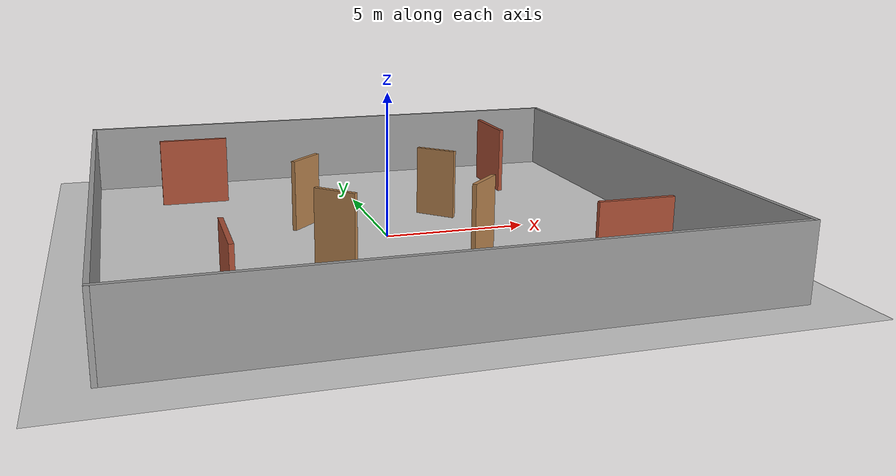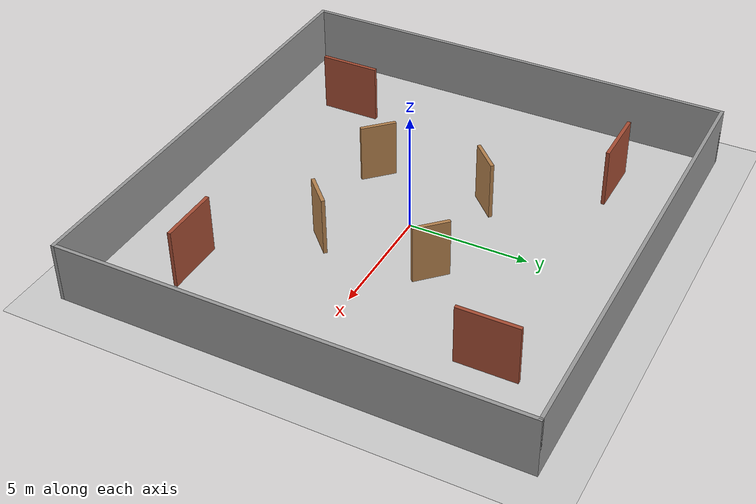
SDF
<sdf version="1.6">
 <world name="default">
  <light name="sun" type="directional">
   <pose>0 0 10 0 -0 0</pose>
   <diffuse>0.8 0.8 0.8 1</diffuse>
   <specular>0.2 0.2 0.2 1</specular>
   <attenuation>
    <range>1000</range>
    <constant>0.9</constant>
    <linear>0.01</linear>
    <quadratic>0.001</quadratic>
   </attenuation>
   <direction>-0.5 0.1 -0.9</direction>
  </light>
  <model name="ground_plane">
   <static>1</static>
   <link name="link">
    <collision name="collision">
     <geometry><plane><normal>0 0 1</normal><size>100 100</size></plane></geometry>
     <surface><friction><ode><mu>100</mu><mu2>50</mu2></ode></friction></surface>
    </collision>
    <visual name="visual">
     <cast_shadows>0</cast_shadows>
     <geometry><plane><normal>0 0 1</normal><size>100 100</size></plane></geometry>
     <material>
      <script><uri>file://media/materials/scripts/gazebo.material</uri><name>Gazebo/Grey</name></script>
     </material>
    </visual>
   </link>
  </model>
  <gravity>0 0 -9.8</gravity>
  <magnetic_field>6e-06 2.3e-05 -4.2e-05</magnetic_field>
  <atmosphere type="adiabatic"/>
  <physics name="default_physics" default="0" type="ode">
   <max_step_size>0.001</max_step_size>
   <real_time_factor>1</real_time_factor>
   <real_time_update_rate>1000</real_time_update_rate>
  </physics>
  <scene><ambient>0.4 0.4 0.4 1</ambient><background>0.7 0.7 0.7 1</background><shadows>1</shadows></scene>
  <spherical_coordinates>
   <surface_model>EARTH_WGS84</surface_model>
   <latitude_deg>0</latitude_deg>
   <longitude_deg>0</longitude_deg>
   <elevation>0</elevation>
   <heading_deg>0</heading_deg>
  </spherical_coordinates>
  <model name="The_Wall.world">
   <link name="Wall_0">
    <collision name="Wall_0_Collision">
     <geometry><box><size>2.5 0.15 2.5</size></box></geometry>
     <pose>0 0 1.25 0 -0 0</pose>
    </collision>
    <visual name="Wall_0_Visual">
     <pose>0 0 1.25 0 -0 0</pose>
     <geometry><box><size>2.5 0.15 2.5</size></box></geometry>
     <material>
      <script><uri>file://media/materials/scripts/gazebo.material</uri><name>Gazebo/Bricks</name></script>
      <ambient>1 1 1 1</ambient>
     </material>
     <meta><layer>0</layer></meta>
    </visual>
    <pose>-6.00681 6.28707 0 0 -0 0</pose>
   </link>
   <link name="Wall_10">
    <collision name="Wall_10_Collision">
     <geometry><box><size>1.5 0.15 2.5</size></box></geometry>
     <pose>0 0 1.25 0 -0 0</pose>
    </collision>
    <visual name="Wall_10_Visual">
     <pose>0 0 1.25 0 -0 0</pose>
     <geometry><box><size>1.5 0.15 2.5</size></box></geometry>
     <material>
      <script><uri>file://media/materials/scripts/gazebo.material</uri><name>Gazebo/Wood</name></script>
      <ambient>1 1 1 1</ambient>
     </material>
     <meta><layer>0</layer></meta>
    </visual>
    <pose>2.45902 2.11015 0 0 -0 -0.785398</pose>
   </link>
   <link name="Wall_14">
    <collision name="Wall_14_Collision">
     <geometry><box><size>1.5 0.15 2.5</size></box></geometry>
     <pose>0 0 1.25 0 -0 0</pose>
    </collision>
    <visual name="Wall_14_Visual">
     <pose>0 0 1.25 0 -0 0</pose>
     <geometry><box><size>1.5 0.15 2.5</size></box></geometry>
     <material>
      <script><uri>file://media/materials/scripts/gazebo.material</uri><name>Gazebo/Wood</name></script>
      <ambient>1 1 1 1</ambient>
     </material>
     <meta><layer>0</layer></meta>
    </visual>
    <pose>2.49665 -2.65194 0 0 -0 -2.35619</pose>
   </link>
   <link name="Wall_16">
    <collision name="Wall_16_Collision">
     <geometry><box><size>1.5 0.15 2.5</size></box></geometry>
     <pose>0 0 1.25 0 -0 0</pose>
    </collision>
    <visual name="Wall_16_Visual">
     <pose>0 0 1.25 0 -0 0</pose>
     <geometry><box><size>1.5 0.15 2.5</size></box></geometry>
     <material>
      <script><uri>file://media/materials/scripts/gazebo.material</uri><name>Gazebo/Wood</name></script>
      <ambient>1 1 1 1</ambient>
     </material>
     <meta><layer>0</layer></meta>
    </visual>
    <pose>-2.4297 -2.69493 0 0 -0 -0.785398</pose>
   </link>
   <link name="Wall_2">
    <collision name="Wall_2_Collision">
     <geometry><box><size>2.5 0.15 2.5</size></box></geometry>
     <pose>0 0 1.25 0 -0 0</pose>
    </collision>
    <visual name="Wall_2_Visual">
     <pose>0 0 1.25 0 -0 0</pose>
     <geometry><box><size>2.5 0.15 2.5</size></box></geometry>
     <material>
      <script><uri>file://media/materials/scripts/gazebo.material</uri><name>Gazebo/Bricks</name></script>
      <ambient>1 1 1 1</ambient>
     </material>
     <meta><layer>0</layer></meta>
    </visual>
    <pose>-6.17502 -6.05993 0 0 -0 -1.5708</pose>
   </link>
   <link name="Wall_4">
    <collision name="Wall_4_Collision">
     <geometry><box><size>2.5 0.15 2.5</size></box></geometry>
     <pose>0 0 1.25 0 -0 0</pose>
    </collision>
    <visual name="Wall_4_Visual">
     <pose>0 0 1.25 0 -0 0</pose>
     <geometry><box><size>2.5 0.15 2.5</size></box></geometry>
     <material>
      <script><uri>file://media/materials/scripts/gazebo.material</uri><name>Gazebo/Bricks</name></script>
      <ambient>1 1 1 1</ambient>
     </material>
     <meta><layer>0</layer></meta>
    </visual>
    <pose>6.00681 -6.13065 0 0 -0 0</pose>
   </link>
   <link name="Wall_6">
    <collision name="Wall_6_Collision">
     <geometry><box><size>2.5 0.15 2.5</size></box></geometry>
     <pose>0 0 1.25 0 -0 0</pose>
    </collision>
    <visual name="Wall_6_Visual">
     <pose>0 0 1.25 0 -0 0</pose>
     <geometry><box><size>2.5 0.15 2.5</size></box></geometry>
     <material>
      <script><uri>file://media/materials/scripts/gazebo.material</uri><name>Gazebo/Bricks</name></script>
      <ambient>1 1 1 1</ambient>
     </material>
     <meta><layer>0</layer></meta>
    </visual>
    <pose>6.13055 6.05993 0 0 -0 1.5708</pose>
   </link>
   <link name="Wall_8">
    <collision name="Wall_8_Collision">
     <geometry><box><size>1.5 0.15 2.5</size></box></geometry>
     <pose>0 0 1.25 0 -0 0</pose>
    </collision>
    <visual name="Wall_8_Visual">
     <pose>0 0 1.25 0 -0 0</pose>
     <geometry><box><size>1.5 0.15 2.5</size></box></geometry>
     <material>
      <script><uri>file://media/materials/scripts/gazebo.material</uri><name>Gazebo/Wood</name></script>
      <ambient>1 1 1 1</ambient>
     </material>
     <meta><layer>0</layer></meta>
    </visual>
    <pose>-2.45085 2.06532 0 0 -0 -2.35619</pose>
   </link>
   <static>1</static>
  </model>
  <model name="wall_2.world">
   <link name="Wall_2">
    <collision name="Wall_2_Collision">
     <geometry><box><size>19.5 0.15 2.5</size></box></geometry>
     <pose>0 0 1.25 0 -0 0</pose>
    </collision>
    <visual name="Wall_2_Visual">
     <pose>0 0 1.25 0 -0 0</pose>
     <geometry><box><size>19.5 0.15 2.5</size></box></geometry>
     <material>
      <script><uri>file://media/materials/scripts/gazebo.material</uri><name>Gazebo/Grey</name></script>
      <ambient>1 1 1 1</ambient>
     </material>
     <meta><layer>0</layer></meta>
    </visual>
    <pose>0 9.425 0 0 -0 0</pose>
   </link>
   <link name="Wall_3">
    <collision name="Wall_3_Collision">
     <geometry><box><size>19 0.15 2.5</size></box></geometry>
     <pose>0 0 1.25 0 -0 0</pose>
    </collision>
    <visual name="Wall_3_Visual">
     <pose>0 0 1.25 0 -0 0</pose>
     <geometry><box><size>19 0.15 2.5</size></box></geometry>
     <material>
      <script><uri>file://media/materials/scripts/gazebo.material</uri><name>Gazebo/Grey</name></script>
      <ambient>1 1 1 1</ambient>
     </material>
     <meta><layer>0</layer></meta>
    </visual>
    <pose>9.675 -0 0 0 -0 -1.5708</pose>
   </link>
   <link name="Wall_4">
    <collision name="Wall_4_Collision">
     <geometry><box><size>19.5 0.15 2.5</size></box></geometry>
     <pose>0 0 1.25 0 -0 0</pose>
    </collision>
    <visual name="Wall_4_Visual">
     <pose>0 0 1.25 0 -0 0</pose>
     <geometry><box><size>19.5 0.15 2.5</size></box></geometry>
     <material>
      <script><uri>file://media/materials/scripts/gazebo.material</uri><name>Gazebo/Grey</name></script>
      <ambient>1 1 1 1</ambient>
     </material>
     <meta><layer>0</layer></meta>
    </visual>
    <pose>0 -9.425 0 0 -0 3.14159</pose>
   </link>
   <link name="Wall_5">
    <collision name="Wall_5_Collision">
     <geometry><box><size>19 0.15 2.5</size></box></geometry>
     <pose>0 0 1.25 0 -0 0</pose>
    </collision>
    <visual name="Wall_5_Visual">
     <pose>0 0 1.25 0 -0 0</pose>
     <geometry><box><size>19 0.15 2.5</size></box></geometry>
     <material>
      <script><uri>file://media/materials/scripts/gazebo.material</uri><name>Gazebo/Grey</name></script>
      <ambient>1 1 1 1</ambient>
     </material>
     <meta><layer>0</layer></meta>
    </visual>
    <pose>-9.675 -0 0 0 -0 1.5708</pose>
   </link>
   <static>1</static>
  </model>
 </world>
</sdf>
